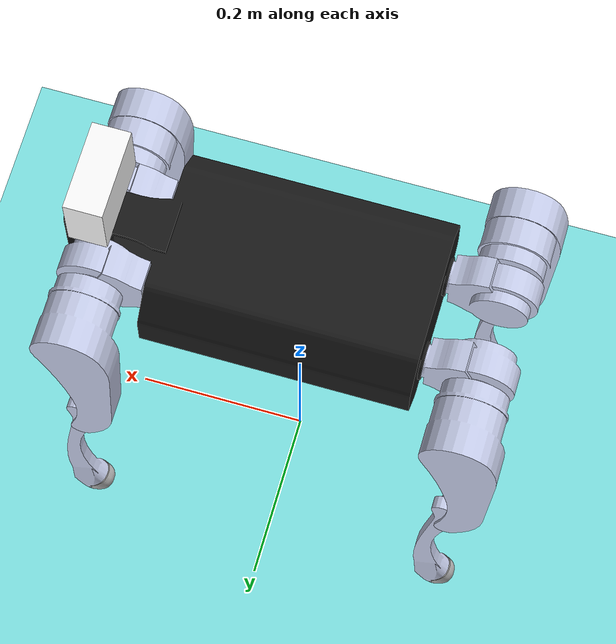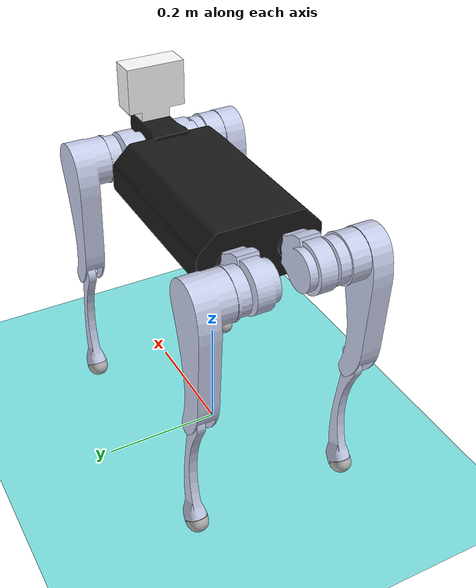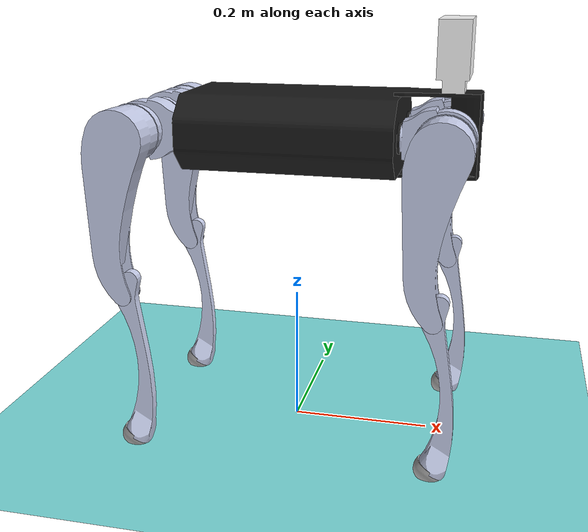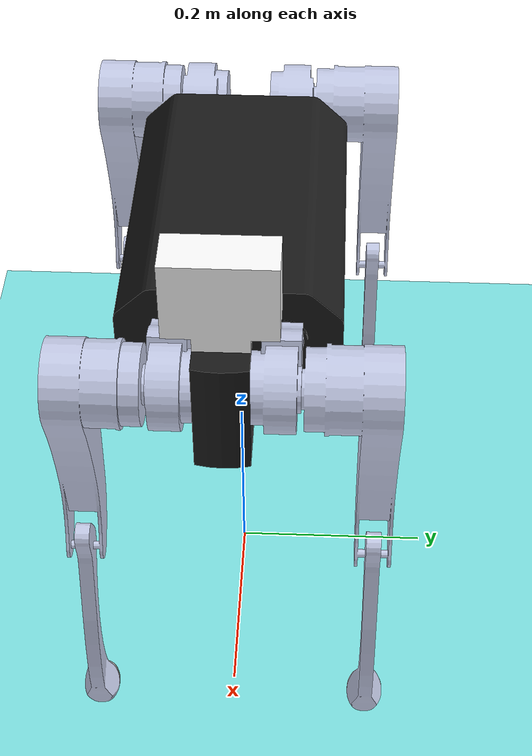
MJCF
<mujoco model="dog">
  <compiler angle="radian" meshdir="../meshes/"/>
  <size njmax="500" nconmax="100"/>
  <option gravity="0 0 -9.806" iterations="50" solver="Newton" timestep="0.005"/>

  <default>
    <geom contype="1" conaffinity="1" friction="0.6 0.3 0.3" margin="0.001" group="0"/>
    <light castshadow="false" diffuse="1 1 1"/>
    <joint damping="0.01" armature="0.01" frictionloss="0.2" />
    <camera fovy="60"/>
  </default>

  <asset>
    <!-- 纹理 -->
    <texture type="skybox" builtin="gradient" rgb1="1.0 1.0 1.0" rgb2="0.6 0.8 1.0" width="512" height="512"/>
    <texture name="plane" type="2d" builtin="flat" rgb1="1 1 1" rgb2="1 1 1" width="512" height="512" mark="cross" markrgb="0 0 0"/>
    <material name="plane" reflectance="0.0" texture="plane" texrepeat="3 3" texuniform="true"/>

    <!-- 机体 mesh -->
    <mesh name="base"     file="base.STL"/>
    <mesh name="ODIN1"    file="ODIN1.STL"/>
    <mesh name="FL_hip"   file="FL_hip.STL"/>
    <mesh name="FL_thigh" file="FL_thigh.STL"/>
    <mesh name="FL_calf"  file="FL_calf.STL"/>
    <mesh name="FL_foot"  file="FL_foot.STL"/>
    <mesh name="FR_hip"   file="FR_hip.STL"/>
    <mesh name="FR_thigh" file="FR_thigh.STL"/>
    <mesh name="FR_calf"  file="FR_calf.STL"/>
    <mesh name="FR_foot"  file="FR_foot.STL"/>
    <mesh name="RR_hip"   file="RR_hip.STL"/>
    <mesh name="RR_thigh" file="RR_thigh.STL"/>
    <mesh name="RR_calf"  file="RR_calf.STL"/>
    <mesh name="RR_foot"  file="RR_foot.STL"/>
    <mesh name="RL_hip"   file="RL_hip.STL"/>
    <mesh name="RL_thigh" file="RL_thigh.STL"/>
    <mesh name="RL_calf"  file="RL_calf.STL"/>
    <mesh name="RL_foot"  file="RR_foot.STL"/>
  </asset>

  <visual>
    <rgba com="0.502 1.0 0 0.5" contactforce="0.98 0.4 0.4 0.7" contactpoint="1.0 1.0 0.6 0.4"/>
    <scale com="0.2" forcewidth="0.035" contactwidth="0.10" contactheight="0.04"/>
  </visual>

  <worldbody>
    <light directional="true" diffuse=".8 .8 .8" pos="0 0 10" dir="0 0 -10"/>
    <camera name="track" mode="trackcom" pos="0 -1.3 1.6" xyaxes="1 0 0 0 0.707 0.707"/>

    <geom name="floor" type="plane" conaffinity="1" condim="3" contype="1" rgba="0.5 0.9 0.9 0.1" material="plane" pos="0 0 0" size="0 0 1"/>

    <!-- ============ 基座 ============ -->
    <body name="trunk" pos="0 0 0.45">
      <inertial pos="0.0063754 0 0" quat="1 0 0 0" mass="13.555" diaginertia="0.13989 0.11159 0.051785"/>
      <joint type="free"/>
      <!-- 视觉: mesh -->
      <geom type="mesh" mesh="base" contype="0" conaffinity="0" group="1" rgba="0.10196 0.10196 0.10196 1"/>
      <!-- 碰撞: box -->
      <geom size="0.1531 0.04675 0.052" type="box" rgba="0.10196 0.10196 0.10196 0"/>
      <!-- ODIN1 -->
      <geom type="mesh" mesh="ODIN1" pos="0.21725 0 0.1165" contype="0" conaffinity="0" group="1" rgba="1 1 1 1"/>
      <site name="imu" pos="0 0 0"/>

      <!-- ==================== FL Leg ==================== -->
      <body name="FL_hip" pos="0.2145 0.05 0">
        <inertial pos="-0.010697 -0.0033174 0" quat="0.483303 0.483303 0.516157 0.516157" mass="0.33292" diaginertia="0.000342408 0.00025417 0.000178192"/>
        <joint name="FL_hip_joint" pos="0 0 0" axis="-1 0 0" range="-1.05 1.05" actuatorfrcrange="-17 17"/>
        <!-- 视觉: mesh -->
        <geom type="mesh" mesh="FL_hip" contype="0" conaffinity="0" group="1" rgba="0.79216 0.81961 0.93333 1"/>
        <!-- 碰撞: cylinder -->
        <geom size="0.0405 0.01575" pos="0 0.088 0" quat="0.707105 0.707108 0 0" type="cylinder" rgba="0.79216 0.81961 0.93333 0"/>

        <body name="FL_thigh" pos="0 0.088 0">
          <inertial pos="-0.0069171 -0.014196 -0.040905" quat="0.937237 -0.0612753 -0.0854854 -0.332451" mass="1.5467" diaginertia="0.00673267 0.0061914 0.00123923"/>
          <joint name="FL_thigh_joint" pos="0 0 0" axis="0 -1 0" range="-1.57 3.49" actuatorfrcrange="-17 17"/>
          <geom type="mesh" mesh="FL_thigh" contype="0" conaffinity="0" group="1" rgba="0.79216 0.81961 0.93333 1"/>
          <geom size="0.06 0.0175 0.022885" pos="-0.018 0 -0.11" quat="0.707105 0 0.707108 0" type="box" rgba="0.79216 0.81961 0.93333 0"/>

          <body name="FL_calf" pos="0 0 -0.22">
            <inertial pos="0.011153 4.09347e-10 -0.144935" quat="0.706789 0.0212082 0.0212082 0.706789" mass="0.199013" diaginertia="0.00129806 0.00128534 2.78097e-05"/>
            <joint name="FL_calf_joint" pos="0 0 0" axis="0 1 0" range="-2.72 -1" actuatorfrcrange="-34 34"/>
            <geom type="mesh" mesh="FL_calf" contype="0" conaffinity="0" group="1" rgba="0.79216 0.81961 0.93333 1"/>
            <geom size="0.012 0.06" pos="0.008 0 -0.06" quat="0.994493 0 -0.104807 0" type="cylinder" rgba="0.79216 0.81961 0.93333 0"/>
            <geom size="0.011 0.0325" pos="0.02 0 -0.148" quat="0.999688 0 0.0249974 0" type="cylinder" rgba="0.79216 0.81961 0.93333 0"/>
            <geom size="0.0105 0.02" pos="0.0108097 0 -0.191595" quat="0.974794 0 0.223106 0" type="cylinder" rgba="0.79216 0.81961 0.93333 0"/>
            <!-- 脚: 视觉mesh + 碰撞sphere -->
            <geom type="mesh" mesh="FL_foot" pos="0.001 0 -0.22349" contype="0" conaffinity="0" group="1" rgba="0.69804 0.69804 0.69804 1"/>
            <geom name="FL_foot_col" size="0.02" pos="0.001 0 -0.22349" rgba="0.69804 0.69804 0.69804 0"/>
          </body>
        </body>
      </body>

      <!-- ==================== FR Leg ==================== -->
      <body name="FR_hip" pos="0.2145 -0.05 0">
        <inertial pos="-0.010697 0.0033174 0" quat="0.516157 0.516157 0.483303 0.483303" mass="0.33292" diaginertia="0.000342408 0.00025417 0.000178192"/>
        <joint name="FR_hip_joint" pos="0 0 0" axis="-1 0 0" range="-1.05 1.05" actuatorfrcrange="-17 17"/>
        <!-- 视觉: mesh -->
        <geom type="mesh" mesh="FR_hip" contype="0" conaffinity="0" group="1" rgba="0.79216 0.81961 0.93333 1"/>
        <!-- 碰撞: cylinder -->
        <geom size="0.0405 0.01575" pos="0 -0.088 0" quat="0.707105 0.707108 0 0" type="cylinder" rgba="0.79216 0.81961 0.93333 0"/>

        <body name="FR_thigh" pos="0 -0.088 0">
          <inertial pos="-0.0069171 0.014196 -0.040905" quat="0.937237 0.0612753 -0.0854854 0.332451" mass="1.5467" diaginertia="0.00673267 0.0061914 0.00123923"/>
          <joint name="FR_thigh_joint" pos="0 0 0" axis="0 1 0" range="-1.57 3.49" actuatorfrcrange="-17 17"/>
          <geom type="mesh" mesh="FR_thigh" contype="0" conaffinity="0" group="1" rgba="0.79216 0.81961 0.93333 1"/>
          <geom size="0.06 0.0175 0.022885" pos="-0.018 0 -0.11" quat="0.707105 0 0.707108 0" type="box" rgba="0.79216 0.81961 0.93333 0"/>

          <body name="FR_calf" pos="0 0 -0.22">
            <inertial pos="0.011153 4.14072e-10 -0.144935" quat="0.706788 0.0212297 0.0212297 0.706788" mass="0.199013" diaginertia="0.00129806 0.00128525 2.78984e-05"/>
            <joint name="FR_calf_joint" pos="0 0 0" axis="0 -1 0" range="1 2.72" actuatorfrcrange="-34 34"/>
            <geom type="mesh" mesh="FR_calf" contype="0" conaffinity="0" group="1" rgba="0.79216 0.81961 0.93333 1"/>
            <geom size="0.012 0.06" pos="0.008 0 -0.06" quat="0.994493 0 -0.104807 0" type="cylinder" rgba="0.79216 0.81961 0.93333 0"/>
            <geom size="0.011 0.0325" pos="0.02 0 -0.148" quat="0.999688 0 0.0249974 0" type="cylinder" rgba="0.79216 0.81961 0.93333 0"/>
            <geom size="0.0105 0.02" pos="0.0108097 0 -0.191595" quat="0.965093 0 0.261909 0" type="cylinder" rgba="0.79216 0.81961 0.93333 0"/>
            <!-- 脚: 视觉mesh + 碰撞sphere -->
            <geom type="mesh" mesh="FR_foot" pos="0.001 0 -0.22349" contype="0" conaffinity="0" group="1" rgba="0.69804 0.69804 0.69804 1"/>
            <geom name="FR_foot_col" size="0.02" pos="0.001 0 -0.22349" rgba="0.69804 0.69804 0.69804 0"/>
          </body>
        </body>
      </body>

      <!-- ==================== RR Leg ==================== -->
      <body name="RR_hip" pos="-0.2145 -0.05 0">
        <inertial pos="0.010697 0.0033174 0" quat="0.483303 0.483303 0.516157 0.516157" mass="0.33292" diaginertia="0.000342408 0.00025417 0.000178192"/>
        <joint name="RR_hip_joint" pos="0 0 0" axis="1 0 0" range="-1.05 1.05" actuatorfrcrange="-17 17"/>
        <!-- 视觉: mesh -->
        <geom type="mesh" mesh="RR_hip" contype="0" conaffinity="0" group="1" rgba="0.79216 0.81961 0.93333 1"/>
        <!-- 碰撞: cylinder -->
        <geom size="0.0405 0.01575" pos="0 -0.088 0" quat="0.707105 0.707108 0 0" type="cylinder" rgba="0.79216 0.81961 0.93333 0"/>

        <body name="RR_thigh" pos="0 -0.088 0">
          <inertial pos="-0.0069171 0.014196 -0.040905" quat="0.937237 0.0612753 -0.0854854 0.332451" mass="1.5467" diaginertia="0.00673267 0.0061914 0.00123923"/>
          <joint name="RR_thigh_joint" pos="0 0 0" axis="0 1 0" range="-1.57 3.49" actuatorfrcrange="-17 17"/>
          <geom type="mesh" mesh="RR_thigh" contype="0" conaffinity="0" group="1" rgba="0.79216 0.81961 0.93333 1"/>
          <geom size="0.06 0.0175 0.022885" pos="-0.018 0 -0.11" quat="0.707105 0 0.707108 0" type="box" rgba="0.79216 0.81961 0.93333 0"/>

          <body name="RR_calf" pos="0 0 -0.22">
            <inertial pos="0.011153 4.14072e-10 -0.144935" quat="0.706788 0.0212297 0.0212297 0.706788" mass="0.199013" diaginertia="0.00129806 0.00128525 2.78984e-05"/>
            <joint name="RR_calf_joint" pos="0 0 0" axis="0 -1 0" range="1 2.72" actuatorfrcrange="-34 34"/>
            <geom type="mesh" mesh="RR_calf" contype="0" conaffinity="0" group="1" rgba="0.79216 0.81961 0.93333 1"/>
            <geom size="0.012 0.06" pos="0.008 0 -0.06" quat="0.994493 0 -0.104807 0" type="cylinder" rgba="0.79216 0.81961 0.93333 0"/>
            <geom size="0.011 0.0325" pos="0.02 0 -0.148" quat="0.999688 0 0.0249974 0" type="cylinder" rgba="0.79216 0.81961 0.93333 0"/>
            <geom size="0.0105 0.02" pos="0.0108097 0 -0.191595" quat="0.965093 0 0.261909 0" type="cylinder" rgba="0.79216 0.81961 0.93333 0"/>
            <!-- 脚: 视觉mesh + 碰撞sphere -->
            <geom type="mesh" mesh="RR_foot" pos="0.001 0 -0.22349" contype="0" conaffinity="0" group="1" rgba="0.69804 0.69804 0.69804 1"/>
            <geom name="RR_foot_col" size="0.02" pos="0.001 0 -0.22349" rgba="0.69804 0.69804 0.69804 0"/>
          </body>
        </body>
      </body>

      <!-- ==================== RL Leg ==================== -->
      <body name="RL_hip" pos="-0.2145 0.05 0">
        <inertial pos="0.010697 -0.0033174 0" quat="0.516157 0.516157 0.483303 0.483303" mass="0.33292" diaginertia="0.000342408 0.00025417 0.000178192"/>
        <joint name="RL_hip_joint" pos="0 0 0" axis="1 0 0" range="-1.05 1.05" actuatorfrcrange="-17 17"/>
        <!-- 视觉: mesh -->
        <geom type="mesh" mesh="RL_hip" contype="0" conaffinity="0" group="1" rgba="0.79216 0.81961 0.93333 1"/>
        <!-- 碰撞: cylinder -->
        <geom size="0.0405 0.01575" pos="0 0.088 0" quat="0.707105 0.707108 0 0" type="cylinder" rgba="0.79216 0.81961 0.93333 0"/>

        <body name="RL_thigh" pos="0 0.088 0">
          <inertial pos="-0.0069171 -0.014196 -0.040905" quat="0.937237 -0.0612753 -0.0854854 -0.332451" mass="1.5467" diaginertia="0.00673267 0.0061914 0.00123923"/>
          <joint name="RL_thigh_joint" pos="0 0 0" axis="0 -1 0" range="-1.57 3.49" actuatorfrcrange="-17 17"/>
          <geom type="mesh" mesh="RL_thigh" contype="0" conaffinity="0" group="1" rgba="0.79216 0.81961 0.93333 1"/>
          <geom size="0.06 0.0175 0.022885" pos="-0.018 0 -0.11" quat="0.707105 0 0.707108 0" type="box" rgba="0.79216 0.81961 0.93333 0"/>

          <body name="RL_calf" pos="0 0 -0.22">
            <inertial pos="0.0111521 4.07726e-10 -0.144935" quat="0.706788 0.021234 0.021234 0.706788" mass="0.199013" diaginertia="0.00129807 0.00128526 2.79007e-05"/>
            <joint name="RL_calf_joint" pos="0 0 0" axis="0 1 0" range="-2.72 -1" actuatorfrcrange="-34 34"/>
            <geom type="mesh" mesh="RL_calf" contype="0" conaffinity="0" group="1" rgba="0.79216 0.81961 0.93333 1"/>
            <geom size="0.012 0.06" pos="0.008 0 -0.06" quat="0.994493 0 -0.104807 0" type="cylinder" rgba="0.79216 0.81961 0.93333 0"/>
            <geom size="0.011 0.0325" pos="0.02 0 -0.148" quat="0.999688 0 0.0249974 0" type="cylinder" rgba="0.79216 0.81961 0.93333 0"/>
            <geom size="0.0105 0.02" pos="0.0108097 0 -0.191595" quat="0.965093 0 0.261909 0" type="cylinder" rgba="0.79216 0.81961 0.93333 0"/>
            <!-- 脚: 视觉mesh + 碰撞sphere -->
            <geom type="mesh" mesh="RL_foot" pos="0.001 0 -0.22349" contype="0" conaffinity="0" group="1" rgba="0.69804 0.69804 0.69804 1"/>
            <geom name="RL_foot_col" size="0.02" pos="0.001 0 -0.22349" rgba="0.69804 0.69804 0.69804 0"/>
          </body>
        </body>
      </body>

    </body><!-- end trunk -->
  </worldbody>

  <!-- ============ Actuators (FL, FR, RR, RL = 与URDF/Isaac一致) ============ -->
  <actuator>
    <motor name="FL_hip"   gear="1" joint="FL_hip_joint"   ctrlrange="-23.7 23.7"   ctrllimited="true"/>
    <motor name="FL_thigh" gear="1" joint="FL_thigh_joint" ctrlrange="-23.7 23.7"   ctrllimited="true"/>
    <motor name="FL_calf"  gear="1" joint="FL_calf_joint"  ctrlrange="-35.55 35.55" ctrllimited="true"/>
    <motor name="FR_hip"   gear="1" joint="FR_hip_joint"   ctrlrange="-23.7 23.7"   ctrllimited="true"/>
    <motor name="FR_thigh" gear="1" joint="FR_thigh_joint" ctrlrange="-23.7 23.7"   ctrllimited="true"/>
    <motor name="FR_calf"  gear="1" joint="FR_calf_joint"  ctrlrange="-35.55 35.55" ctrllimited="true"/>
    <motor name="RR_hip"   gear="1" joint="RR_hip_joint"   ctrlrange="-23.7 23.7"   ctrllimited="true"/>
    <motor name="RR_thigh" gear="1" joint="RR_thigh_joint" ctrlrange="-23.7 23.7"   ctrllimited="true"/>
    <motor name="RR_calf"  gear="1" joint="RR_calf_joint"  ctrlrange="-35.55 35.55" ctrllimited="true"/>
    <motor name="RL_hip"   gear="1" joint="RL_hip_joint"   ctrlrange="-23.7 23.7"   ctrllimited="true"/>
    <motor name="RL_thigh" gear="1" joint="RL_thigh_joint" ctrlrange="-23.7 23.7"   ctrllimited="true"/>
    <motor name="RL_calf"  gear="1" joint="RL_calf_joint"  ctrlrange="-35.55 35.55" ctrllimited="true"/>
  </actuator>

  <!-- ============ Sensors ============ -->
  <sensor>
    <jointpos name="FL_hip_pos"   joint="FL_hip_joint"/>
    <jointpos name="FL_thigh_pos" joint="FL_thigh_joint"/>
    <jointpos name="FL_calf_pos"  joint="FL_calf_joint"/>
    <jointpos name="FR_hip_pos"   joint="FR_hip_joint"/>
    <jointpos name="FR_thigh_pos" joint="FR_thigh_joint"/>
    <jointpos name="FR_calf_pos"  joint="FR_calf_joint"/>
    <jointpos name="RR_hip_pos"   joint="RR_hip_joint"/>
    <jointpos name="RR_thigh_pos" joint="RR_thigh_joint"/>
    <jointpos name="RR_calf_pos"  joint="RR_calf_joint"/>
    <jointpos name="RL_hip_pos"   joint="RL_hip_joint"/>
    <jointpos name="RL_thigh_pos" joint="RL_thigh_joint"/>
    <jointpos name="RL_calf_pos"  joint="RL_calf_joint"/>

    <jointvel name="FL_hip_vel"   joint="FL_hip_joint"/>
    <jointvel name="FL_thigh_vel" joint="FL_thigh_joint"/>
    <jointvel name="FL_calf_vel"  joint="FL_calf_joint"/>
    <jointvel name="FR_hip_vel"   joint="FR_hip_joint"/>
    <jointvel name="FR_thigh_vel" joint="FR_thigh_joint"/>
    <jointvel name="FR_calf_vel"  joint="FR_calf_joint"/>
    <jointvel name="RR_hip_vel"   joint="RR_hip_joint"/>
    <jointvel name="RR_thigh_vel" joint="RR_thigh_joint"/>
    <jointvel name="RR_calf_vel"  joint="RR_calf_joint"/>
    <jointvel name="RL_hip_vel"   joint="RL_hip_joint"/>
    <jointvel name="RL_thigh_vel" joint="RL_thigh_joint"/>
    <jointvel name="RL_calf_vel"  joint="RL_calf_joint"/>

    <accelerometer name="Body_Acc"  site="imu"/>
    <gyro          name="Body_Gyro" site="imu"/>
    <framepos      name="Body_Pos"  objtype="site" objname="imu"/>
    <framequat     name="Body_Quat" objtype="site" objname="imu"/>
  </sensor>
</mujoco>
